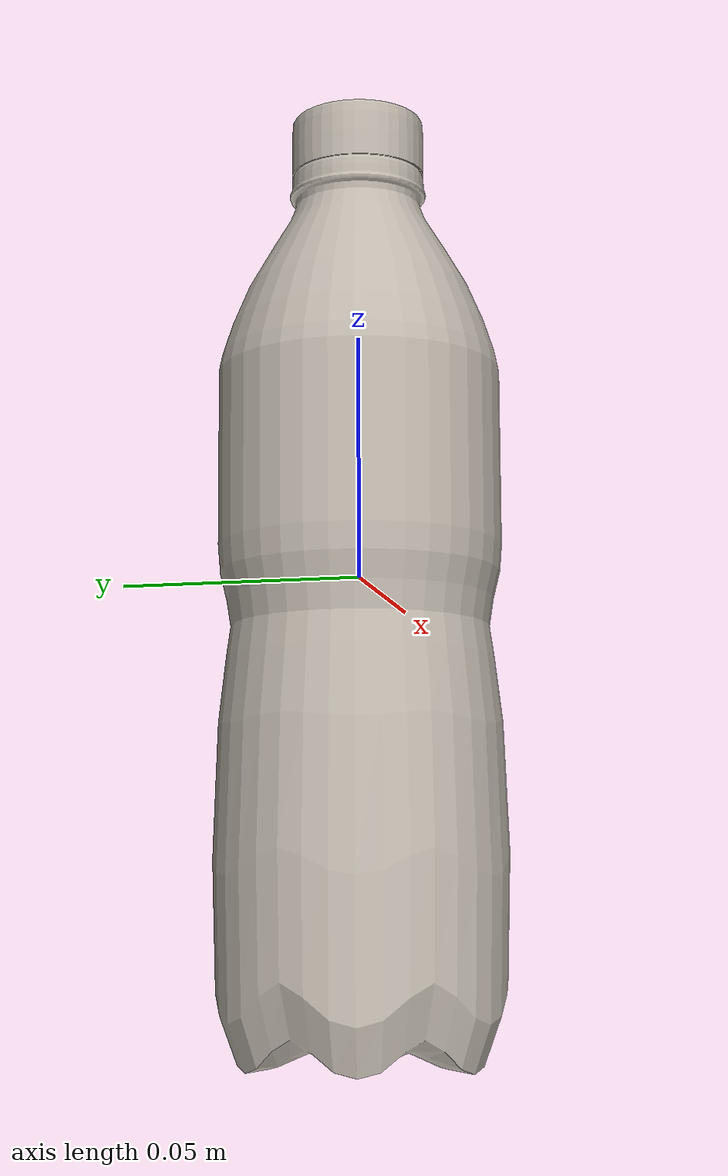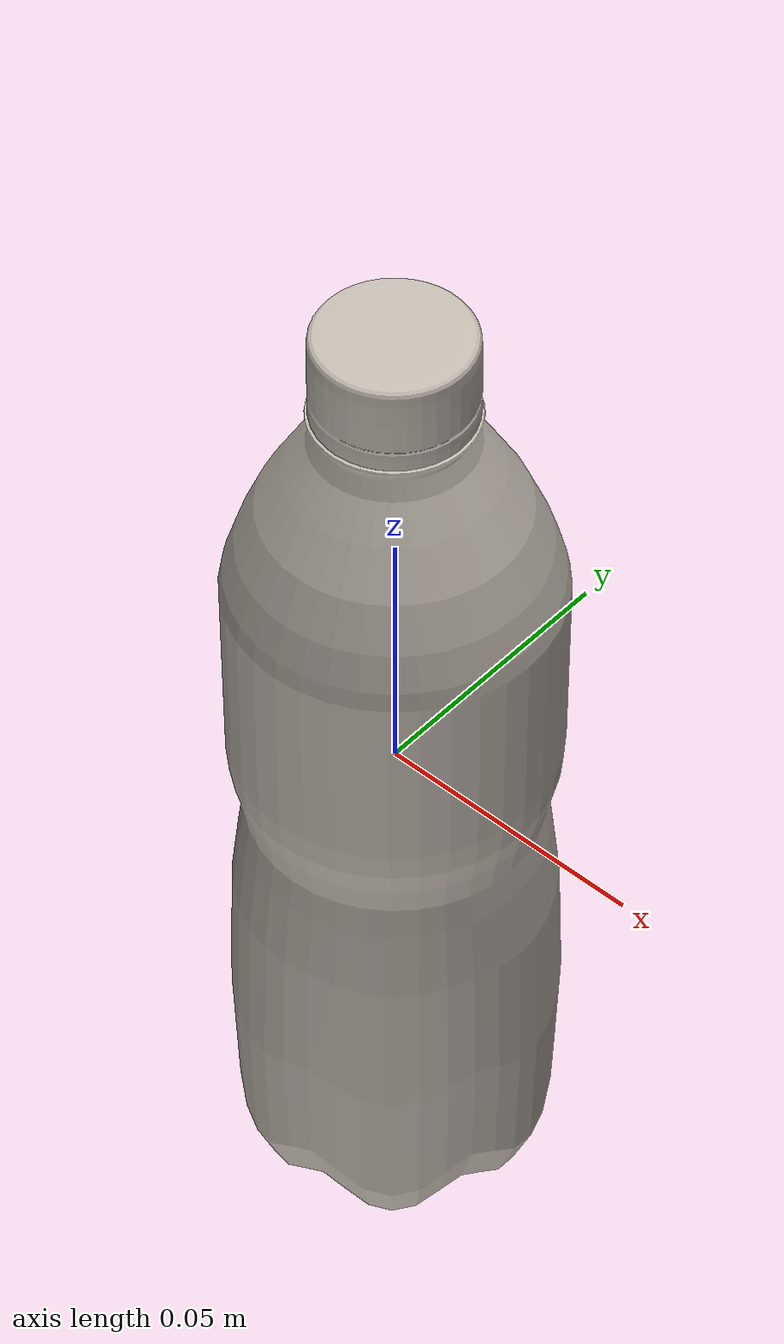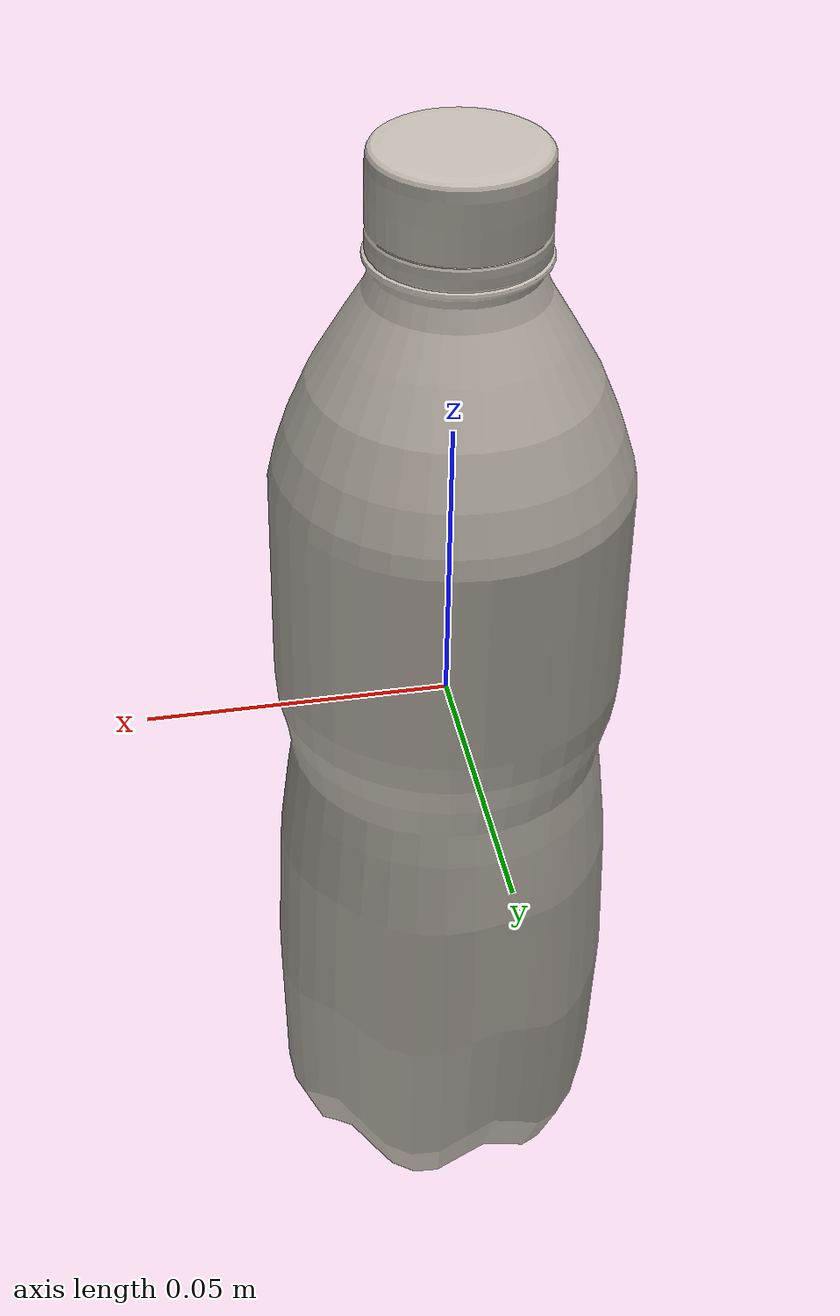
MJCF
<?xml version='1.0' encoding='utf-8'?>
<mujoco model="bottled_water_25">
  <asset>
    <mesh file="visual/model_normalized_0.obj" name="model_normalized_0_vis" scale="0.193939 0.193939 0.193939" refquat="1.0 0.0 0.0 0.0" />
    <mesh file="visual/model_normalized_1.obj" name="model_normalized_1_vis" scale="0.193939 0.193939 0.193939" refquat="1.0 0.0 0.0 0.0" />
    <texture type="2d" name="image0" file="visual/image0.png" />
    <material name="Bottle.001" texture="image0" specular="0.5" shininess="0.359999993" />
    <material name="BottleWater" texture="image0" specular="0.5" shininess="0.359999993" />
    <mesh file="collision/collision_mesh_collision_0.obj" name="bottled_collision_mesh_0" scale="0.193939 0.193939 0.193939" refquat="1.0 0.0 0.0 0.0" />
    <mesh file="collision/collision_mesh_collision_1.obj" name="bottled_collision_mesh_1" scale="0.193939 0.193939 0.193939" refquat="1.0 0.0 0.0 0.0" />
    <mesh file="collision/collision_mesh_collision_2.obj" name="bottled_collision_mesh_2" scale="0.193939 0.193939 0.193939" refquat="1.0 0.0 0.0 0.0" />
    <mesh file="collision/collision_mesh_collision_3.obj" name="bottled_collision_mesh_3" scale="0.193939 0.193939 0.193939" refquat="1.0 0.0 0.0 0.0" />
    <mesh file="collision/collision_mesh_collision_4.obj" name="bottled_collision_mesh_4" scale="0.193939 0.193939 0.193939" refquat="1.0 0.0 0.0 0.0" />
    <mesh file="collision/collision_mesh_collision_5.obj" name="bottled_collision_mesh_5" scale="0.193939 0.193939 0.193939" refquat="1.0 0.0 0.0 0.0" />
    <mesh file="collision/collision_mesh_collision_6.obj" name="bottled_collision_mesh_6" scale="0.193939 0.193939 0.193939" refquat="1.0 0.0 0.0 0.0" />
    <mesh file="collision/collision_mesh_collision_7.obj" name="bottled_collision_mesh_7" scale="0.193939 0.193939 0.193939" refquat="1.0 0.0 0.0 0.0" />
    </asset>
  <default>
    <default class="region">
      <geom group="1" conaffinity="0" contype="0" rgba="0 1 0 0" />
      </default>
    <default class="collision">
      <geom group="3" rgba="0.5 0 0 0.5" density="1000.0" />
      </default>
    </default>
  <worldbody>
    <body>
      <body name="object">
        <geom density="100" friction="0.95 0.3 0.1" type="mesh" mesh="model_normalized_0_vis" conaffinity="0" contype="0" group="1" material="BottleWater" />
        <geom density="100" friction="0.95 0.3 0.1" type="mesh" mesh="model_normalized_1_vis" conaffinity="0" contype="0" group="1" material="Bottle.001" />
        <geom class="region" name="reg_bbox" type="box" pos="-7.652959999999931e-05 0.0002567111999999994 -0.00020553680000000296" size="0.023359779200000003 0.023875737600000006 0.0797033544" />
        <geom mesh="bottled_collision_mesh_0" type="mesh" class="collision"  solref="0.004 1" solimp="0.998 0.998 0.001"/>
        <geom mesh="bottled_collision_mesh_1" type="mesh" class="collision"  solref="0.004 1" solimp="0.998 0.998 0.001"/>
        <geom mesh="bottled_collision_mesh_2" type="mesh" class="collision"  solref="0.004 1" solimp="0.998 0.998 0.001"/>
        <geom mesh="bottled_collision_mesh_3" type="mesh" class="collision"  solref="0.004 1" solimp="0.998 0.998 0.001"/>
        <geom mesh="bottled_collision_mesh_4" type="mesh" class="collision"  solref="0.004 1" solimp="0.998 0.998 0.001"/>
        <geom mesh="bottled_collision_mesh_5" type="mesh" class="collision"  solref="0.004 1" solimp="0.998 0.998 0.001"/>
        <geom mesh="bottled_collision_mesh_6" type="mesh" class="collision"  solref="0.004 1" solimp="0.998 0.998 0.001"/>
        <geom mesh="bottled_collision_mesh_7" type="mesh" class="collision"  solref="0.004 1" solimp="0.998 0.998 0.001"/>
        </body>
      </body>
    </worldbody>
  </mujoco>
